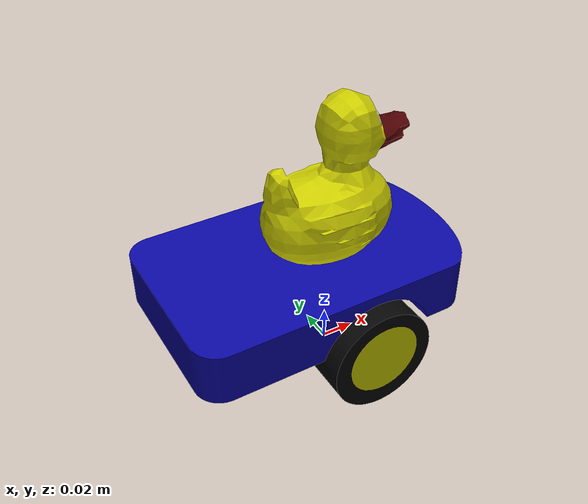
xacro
<?xml version="1.0"?>
<robot name="duckiebot" xmlns:xacro="http://www.ros.org/wiki/xacro">
    <xacro:property name="pi" value="3.14159265359" />
    <link name="duckiebot">
        <visual>
            <origin xyz="0 0 0" rpy="0 0 0"/>
            <geometry>
                <mesh filename="package://duckietown_description/urdf/meshes/duckiebot.dae" />
            </geometry>
        </visual>
    </link>
</robot>
